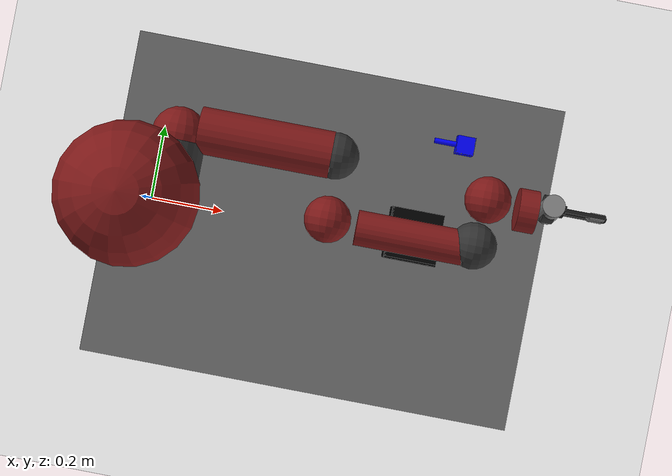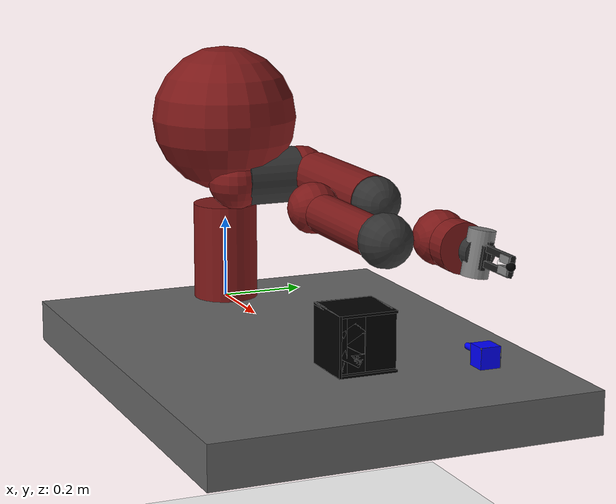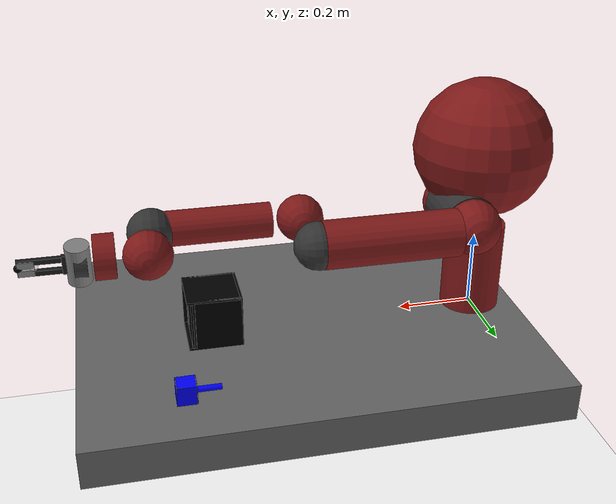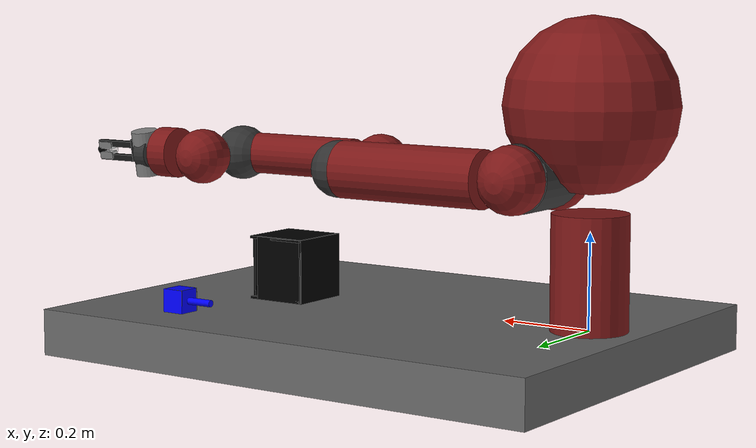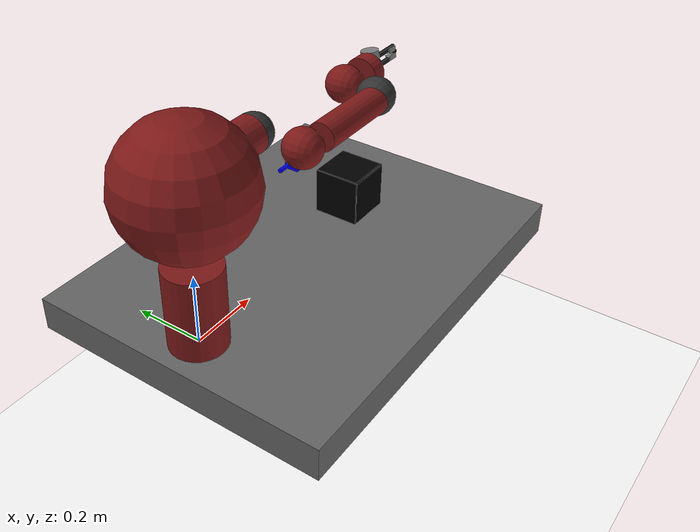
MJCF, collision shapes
<mujoco>
  <size nconmax="1000" njmax="1000" />
  <compiler angle="radian" meshdir="meshes/" />
  <asset>
    <include file="shared_assets.xml"></include>
  </asset>
  <default>
    <include file="shared.xml"></include>
  </default>
  <equality>
    <weld body1="mocap" body2="right_gripper_base" solimp="0.9 0.95 0.001" solref="0.02 1"></weld>
  </equality>
  <option timestep="0.004">
    <flag warmstart="enable"></flag>
  </option>

  <worldbody>
    <light directional="true" ambient="0.2 0.2 0.2" diffuse="0.8 0.8 0.8" specular="0.03 0.03 0.03" castshadow="false" pos="2 2 2" dir="-1 -.2 -.8" name="light0"></light>
    <geom name="floor0" pos="0.4 0 -0.8" size="2.2 2.7 1" type="plane" condim="3" material="floor_mat"></geom>

    <camera name="camera_topdown" mode="fixed" zaxis="0 0 1" pos="0 0 3" />
    <camera name="camera_side" mode="fixed" zaxis="0 -1 0" pos="0.4 -2 0.5" />
    <camera name="camera_front" mode="fixed" xyaxes="0 1 0 0 0 1" pos="2.4 0 0.5" />

    <include file="sawyer_robot.xml"/>
    <body mocap="true" name="mocap" pos="1.04059217 0.160202 0.31832305" quat="-0.45439303 0.54237218 -0.45784103 0.53827594">
      <geom conaffinity="0" contype="0" pos="0 0 0.1" rgba="1.0 1.0 1.0 0.5" size="0.01" type="sphere"></geom>
    </body>

    <include file="objects/box_with_lid_h.xml"/>
    <include file="objects/block_peg_h.xml"/>
  </worldbody>

  <actuator>
    <position ctrllimited="true" ctrlrange="-0.0115 0.03" joint="r_gripper_l_finger_joint" kp="120000" name="slide_l_claw"
              user="1"/>
    <position ctrllimited="true" ctrlrange="-0.03 0.0115" joint="r_gripper_r_finger_joint" kp="120000" name="slide_r_claw"
              user="1"/>

  </actuator>

</mujoco>

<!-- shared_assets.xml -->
<mujoco>
  <texture type="skybox" builtin="gradient" rgb1="0.44 0.85 0.56" rgb2="0.46 0.87 0.58" width="32" height="32"></texture>
  <material name="floor_mat" specular="0" shininess="0.5" reflectance="0" rgba="1 1 1 1"></material>
  <material name="block_mat" specular="0" shininess="0.5" reflectance="0" rgba="0.2 0.2 0.2 1"></material>
  <mesh name="base" file="base.STL" />
  <mesh name="l0" file="l0.STL" />
  <mesh name="head" file="head.STL" />
  <mesh name="l1" file="l1.STL" />
  <mesh name="l2" file="l2.STL" />
  <mesh name="l3" file="l3.STL" />
  <mesh name="l4" file="l4.STL" />
  <mesh name="l5" file="l5.STL" />
  <mesh name="l6" file="l6.STL" />
  <mesh name="half_round_tip" file="half_round_tip.STL" />
  <mesh name="electric_gripper_base" file="electric_gripper_base.STL" />
  <mesh name="finger_extended_narrow" file="extended_narrow.STL"/>
  <mesh name="finger_extended_wide" file="extended_wide.STL"/>
  <mesh name="paddle_tip" file="paddle_tip.STL"/>
  <mesh name="yellow_bin_v1" file="yellow_bin_v1.STL"/>
  <mesh name="red_bin_v1" file="red_bin_v1.STL"/>
  <mesh name="green_bin_v1" file="green_bin_v1.STL"/>
  <mesh name="pedestal_table" file="pedestal_table.STL"/>
  <mesh name="box_body" scale="0.001 0.001 0.001" file="box_body.STL"/>
  <mesh name="box_lid" scale="0.001 0.001 0.001" file="box_lid.STL"/>
  <mesh name="box_triangle" scale="0.001 0.001 0.001" file="box_triangle.STL"/>
</mujoco>

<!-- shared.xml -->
<mujoco>
  <geom solref="0.009 1" solimp="0.8 0.9 0." />
  <default class="viz">
    <geom contype="0" conaffinity="0" group="1" type="mesh"/>
  </default>
  <motor ctrllimited="true" ctrlrange="-1 1"/>
  <position ctrllimited="true"/>
  <default class='0'>
    <geom friction="1 0.005 0.001" rgba=".75 .6 .5 1" contype="1" conaffinity="0"/>
  </default>
  <default class='1'>
    <geom friction="1 0.005 0.001" rgba=".7 .6 .55 1" contype="1" conaffinity="0"/>
  </default>
  <default class='arm'>
  </default>
</mujoco>

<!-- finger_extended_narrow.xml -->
<mujoco>
    <body name="right_gripper_base" pos="0 0 0.025">
    <inertial pos="0 0 0" quat="-0.5 0.5 0.5 0.5" mass="0.3" diaginertia="3e-08 2e-08 2e-08" />
    <geom quat="0 0 0.707107 0.707107" class="viz" mesh="electric_gripper_base" />
    <geom size="0.029 0.05" quat="0 0 0.707107 0.707107" type="cylinder" />
    <body name="r_gripper_l_finger" pos="0 -0.0015 0.02">
        <inertial pos="0 0 0" quat="0 0 0 -1" mass="0.02" diaginertia="0.01 0.01 0.01" />
        <joint name="r_gripper_l_finger_joint" pos="0 0 0" axis="0 1 0" type="slide" range="0.02 0.045" armature="100" damping="1000" limited="true" solimplimit="0.99 0.999 0.01" solreflimit="0.01 1"/>
        <geom class="viz" mesh="finger_extended_narrow" euler="1.57 1.57 0" rgba="0.1 0.1 0.1 1"/>
        <geom size="0.005 0.00675 0.05635" contype="0" pos="0 0.01725 0.0615" quat="0 0 0 -1" type="box" rgba="0.1 0.1 0.1 1"/>
        <geom size="0.005 0.025 0.0085" contype="0" pos="-0.005 -0.003 0.0083" quat="0 0 0 -1" type="box" rgba="0.1 0.1 0.1 1"/>
        <body name="r_gripper_l_finger_tip" pos="0 0.01725 0.1127">
            <inertial pos="0 0 0" quat="0 0 0 1" mass="0.01" diaginertia="0.01 0.01 0.01" />
            <geom pos="-.007 -.01 0.003" class="viz" mesh="half_round_tip" euler="-1.57 0 0" friction="0 0 0"/>
            <geom name="finger_tip_1" size="0.008 0.008 0.0185" pos="0 -0.0045 -0.015" quat="0 0 0 1" type="box" friction="0 0 0"/>
        </body>
    </body>
    <body name="r_gripper_r_finger" pos="0 0.0015 0.02">
        <inertial pos="0 0 0" mass="0.02" diaginertia="0.01 0.01 0.01" />
        <joint name="r_gripper_r_finger_joint" pos="0 0 0" axis="0 1 0" type="slide" range="-0.045 -0.02" armature="100" damping="1000" limited="true" solimplimit="0.99 0.999 0.01" solreflimit="0.01 1"/>
        <geom class="viz" mesh="finger_extended_narrow" euler="1.57 -1.57 0" rgba="0.1 0.1 0.1 1"/>
        <geom size="0.005 0.00675 0.05635" contype="0" pos="0 -0.01725 0.0615" type="box" rgba="0.1 0.1 0.1 1"/>
        <geom size="0.005 0.025 0.0085" contype="0" pos="0.005 0.003 0.0083" type="box" rgba="0.1 0.1 0.1 1"/>
        <body name="r_gripper_r_finger_tip" pos="0 -0.01725 0.1127">
            <inertial pos="0 0 0" mass="0.01" diaginertia="0.01 0.01 0.01" />
            <geom pos=".007 .01 0.003" class="viz" mesh="half_round_tip" euler="-1.57 3.14 0" friction="0 0 0"/>
            <geom name="finger_tip_2" size="0.008 0.008 0.0185" pos="0 0.0045 -0.015" type="box" friction="0 0 0"/>
        </body>
    </body>
    <site name="gripper_site" pos="0 0 0.135" rgba="0 0 0 1" size="0.01" type="sphere"></site>
    </body>
</mujoco>

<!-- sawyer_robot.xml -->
<mujoco>
    <body name="pedestal_table" pos="0.482 0 -0.05">
      <inertial pos="0 0 0" quat="0.659267 -0.259505 -0.260945 0.655692" mass="60.864" diaginertia="6.0869 5.81635 4.20915" />
      <geom name="table" size="0.6 0.45 0.05" pos="0 0 0" type="box" rgba="0.4 0.4 0.4 1" condim="6" friction="0.95 0.3 0.2" />
    <body name="right_arm_base_link" pos="-0.482 0 0.05">
      <inertial pos="-0.0006241 -2.8025e-05 0.065404" quat="-0.209285 0.674441 0.227335 0.670558" mass="2.0687" diaginertia="0.00740351 0.00681776 0.00672942" />
      <geom type="mesh" contype="0" conaffinity="0" group="1" rgba="0.5 0.1 0.1 1" mesh="base" />
      <geom size="0.08 0.12" pos="0 0 0.12" type="cylinder" rgba="0.5 0.1 0.1 0" />
      <body name="right_l0" pos="0 0 0.08">
        <inertial pos="0.024366 0.010969 0.14363" quat="0.894823 0.00899958 -0.170275 0.412573" mass="5.3213" diaginertia="0.0651588 0.0510944 0.0186218" />
        <joint name="right_j0" pos="0 0 0" axis="0 0 1" limited="true" range="-3.0503 3.0503" damping="1000"/>
        <geom type="mesh" contype="0" conaffinity="0" group="1" rgba="0.5 0.1 0.1 1" mesh="l0" />
        <geom size="0.07" pos="0.08 0 0.23" rgba="0.5 0.1 0.1 0" />
        <body name="head" pos="0 0 0.2965">
          <inertial pos="0.0053207 -2.6549e-05 0.1021" quat="0.999993 7.08405e-05 -0.00359857 -0.000626247" mass="1.5795" diaginertia="0.0118334 0.00827089 0.00496574" />
          <geom type="mesh" contype="0" conaffinity="0" group="1" rgba="0.5 0.1 0.1 1" mesh="head" />
          <geom size="0.18" pos="0 0 0.08" rgba="0.5 0.1 0.1 0" />
          <body name="screen" pos="0.03 0 0.105" quat="0.5 0.5 0.5 0.5">
            <inertial pos="0 0 0" mass="0.0001" diaginertia="1e-08 1e-08 1e-08" />
            <geom size="0.12 0.07 0.001" type="box" contype="0" conaffinity="0" group="1" rgba="0.2 0.2 0.2 0" />
            <geom size="0.001" rgba="0.2 0.2 0.2 0" />
          </body>
          <body name="head_camera" pos="0.0228027 0 0.216572" quat="0.342813 -0.618449 0.618449 -0.342813">
            <inertial pos="0.0228027 0 0.216572" quat="0.342813 -0.618449 0.618449 -0.342813" mass="0" diaginertia="0 0 0" />
            <site name="headsite" pos="0 0 0" size="0.01" />
          </body>
        </body>
        <body name="right_torso_itb" pos="-0.055 0 0.22" quat="0.707107 0 -0.707107 0">
          <inertial pos="0 0 0" mass="0.0001" diaginertia="1e-08 1e-08 1e-08" />
        </body>
        <body name="right_l1" pos="0.081 0.05 0.237" quat="0.5 -0.5 0.5 0.5">
          <inertial pos="-0.0030849 -0.026811 0.092521" quat="0.424888 0.891987 0.132364 -0.0794296" mass="4.505" diaginertia="0.0224339 0.0221624 0.0097097" />
          <joint name="right_j1" pos="0 0 0" axis="0 0 1" limited="true" range="-3.8095 2.2736" damping="1000"/>
          <geom type="mesh" contype="0" conaffinity="0" group="1" rgba="0.5 0.1 0.1 1" mesh="l1" />
          <geom size="0.07" pos="0 0 0.1225" rgba="0.5 0.1 0.1 0" />
          <body name="right_l2" pos="0 -0.14 0.1425" quat="0.707107 0.707107 0 0">
            <inertial pos="-0.00016044 -0.014967 0.13582" quat="0.707831 -0.0524761 0.0516007 0.702537" mass="1.745" diaginertia="0.0257928 0.025506 0.00292515" />
            <joint name="right_j2" pos="0 0 0" axis="0 0 1" limited="true" range="-3.0426 3.0426" damping="1000"/>
            <geom type="mesh" contype="0" conaffinity="0" group="1" rgba="0.5 0.1 0.1 1" mesh="l2" />
            <geom size="0.06 0.17" pos="0 0 0.08" type="cylinder" rgba="0.5 0.1 0.1 0" />
            <body name="right_l3" pos="0 -0.042 0.26" quat="0.707107 -0.707107 0 0">
              <site name="armsite" pos="0 0 0" size="0.01" />
              <inertial pos="-0.0048135 -0.0281 -0.084154" quat="0.902999 0.385391 -0.0880901 0.168247" mass="2.5097" diaginertia="0.0102404 0.0096997 0.00369622" />
              <joint name="right_j3" pos="0 0 0" axis="0 0 1" limited="true" range="-3.0439 3.0439" damping="1000"/>
              <geom type="mesh" contype="0" conaffinity="0" group="1" rgba="0.5 0.1 0.1 1" mesh="l3" />
              <geom size="0.06" pos="0 -0.01 -0.12" rgba="0.5 0.1 0.1 0" />
              <body name="right_l4" pos="0 -0.125 -0.1265" quat="0.707107 0.707107 0 0">
                <inertial pos="-0.0018844 0.0069001 0.1341" quat="0.803612 0.031257 -0.0298334 0.593582" mass="1.1136" diaginertia="0.0136549 0.0135493 0.00127353" />
                <joint name="right_j4" pos="0 0 0" axis="0 0 1" limited="true" range="-2.9761 2.9761" damping="1000" />
                <geom type="mesh" contype="0" conaffinity="0" group="1" rgba="0.5 0.1 0.1 1" mesh="l4" />
                <geom size="0.045 0.15" pos="0 0 0.11" type="cylinder" rgba="0.5 0.1 0.1 0" />
                <body name="right_arm_itb" pos="-0.055 0 0.075" quat="0.707107 0 -0.707107 0">
                </body>
                <body name="right_l5" pos="0 0.031 0.275" quat="0.707107 -0.707107 0 0">
                  <inertial pos="0.0061133 -0.023697 0.076416" quat="0.404076 0.9135 0.0473125 0.00158335" mass="1.5625" diaginertia="0.00474131 0.00422857 0.00190672" />
                  <joint name="right_j5" pos="0 0 0" axis="0 0 1" limited="true" range="-2.9761 2.9761" damping="1000"/>
                  <geom type="mesh" contype="0" conaffinity="0" group="1" rgba="0.5 0.1 0.1 1" mesh="l5" />
                  <geom size="0.06" pos="0 0 0.1" rgba="0.5 0.1 0.1 0" />
                  <body name="right_hand_camera" pos="0.039552 -0.033 0.0695" quat="0.707107 0 0.707107 0">
                    <inertial pos="0.039552 -0.033 0.0695" quat="0.707107 0 0.707107 0" mass="0" diaginertia="0 0 0" />
                  </body>
                  <body name="right_wrist" pos="0 0 0.10541" quat="0.707107 0.707107 0 0">
                    <inertial pos="0 0 0.10541" quat="0.707107 0.707107 0 0" mass="0" diaginertia="0 0 0" />
                  </body>
                  <body name="right_l6" pos="0 -0.11 0.1053" quat="0.0616248 0.06163 -0.704416 0.704416">
                    <inertial pos="-8.0726e-06 0.0085838 -0.0049566" quat="0.479044 0.515636 -0.513069 0.491322" mass="0.3292" diaginertia="0.000360258 0.000311068 0.000214974" />
                    <joint name="right_j6" pos="0 0 0" axis="0 0 1" limited="true" range="-4.7124 4.7124" damping="1000"/>
                    <geom type="mesh" contype="0" conaffinity="0" group="1" rgba="0.5 0.1 0.1 1" mesh="l6" />
                    <geom size="0.055 0.025" pos="0 0.015 -0.01" type="cylinder" rgba="0.5 0.1 0.1 0" />
                    <body name="right_hand" pos="0 0 0.0245" quat="0.707107 0 0 0.707107">
                      <inertial pos="1e-08 1e-08 1e-08" quat="0.820473 0.339851 -0.17592 0.424708" mass="1e-08" diaginertia="1e-08 1e-08 1e-08" />
                      <geom size="0.035 0.015" pos="0 0 0.02" type="cylinder" rgba="0.2 0.2 0.2 0"/>

<!--  ================= BEGIN GRIPPER ================= /-->
                                                        <!--site name="endeffector" pos="0 0 0" size="0.01" /-->
                                                    <!--/body-->
                                                <!--/body-->
                      <include file="finger_extended_narrow.xml" />

<!--  ================= END GRIPPER ================= /-->

                    </body>
                  </body>
                </body>
                <body name="right_l4_2" pos="0 0 0">
                  <inertial pos="1e-08 1e-08 1e-08" quat="0.820473 0.339851 -0.17592 0.424708" mass="1e-08" diaginertia="1e-08 1e-08 1e-08" />
                  <geom size="0.06" pos="0 0.01 0.26" rgba="0.2 0.2 0.2 0"/>
                </body>
              </body>
            </body>
            <body name="right_l2_2" pos="0 0 0">
              <inertial pos="1e-08 1e-08 1e-08" quat="0.820473 0.339851 -0.17592 0.424708" mass="1e-08" diaginertia="1e-08 1e-08 1e-08" />
              <geom size="0.06" pos="0 0 0.26" rgba="0.2 0.2 0.2 0"/>
            </body>
          </body>
          <body name="right_l1_2" pos="0 0 0">
            <inertial pos="1e-08 1e-08 1e-08" quat="0.820473 0.339851 -0.17592 0.424708" mass="1e-08" diaginertia="1e-08 1e-08 1e-08" />
            <geom size="0.07 0.07" pos="0 0 0.035" type="cylinder" rgba="0.2 0.2 0.2 0"/>
          </body>
        </body>
      </body>
    </body>
  </body>
</mujoco>

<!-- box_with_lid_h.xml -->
<mujoco>
  <body name="box_base" pos="0.656 0.1 0.002" euler="-1.571 1.571 -1.571">
    <geom name="box_base:mesh" type="mesh" contype="0" conaffinity="0" rgba="0.87 0.72 0.52 1" mesh="box_body"/>
    <geom name="box_base:b1" type="box"
      contype="1" conaffinity="1"
      size="0.06985 0.002778 0.06985" pos="0.06985 0.136922 0.06985" rgba="0 0 0 0"/>
    <geom name="box_base:b2" type="box"
      contype="1" conaffinity="1"
      size="0.06985 0.06985 0.002778" pos="0.06985 0.06985 0.0014" rgba="0 0 0 0"/>
    <geom name="box_base:b3" type="box"
      contype="1" conaffinity="1"
      size="0.002778 0.06985 0.06985" pos="0.002778 0.06985 0.06985" rgba="0 0 0 0"/>
    <geom name="box_base:b4" type="box"
      contype="1" conaffinity="1"
      size="0.002778 0.06985 0.06985" pos="0.136922 0.06985 0.06985" rgba="0 0 0 0"/>
    <geom name="box_base:b5" type="box"
      contype="1" conaffinity="1"
      size="0.06985 0.002778 0.06" pos="0.06985 0.002778 0.06" rgba="0 0 0 0"/>

    <body name="box_lid" pos="0.007 0.0 0.1258">
      <geom name="box_lid:mesh" type="mesh" contype="0" conaffinity="0" rgba="0.87 0.72 0.52 1" mesh="box_lid"/>
      <geom name="box_lid:b1" type="box"
        contype="1" conaffinity="1" condim="1"
        size="0.0635 0.037 0.002381" pos="0.0635 0.037 0.002381" rgba="0 0 0 0"/>
      <geom name="box_lid:b2" type="box"
        contype="1" conaffinity="1" condim="1"
        size="0.02 0.0297 0.002381" pos="0.02 0.1036 0.002381" rgba="0 0 0 0"/>
      <geom name="box_lid:b3" type="box"
        contype="1" conaffinity="1" condim="1"
        size="0.02 0.0297 0.002381" pos="0.107 0.1036 0.002381" rgba="0 0 0 0"/>
      <geom name="box_lid:b4" type="box"
        contype="1" conaffinity="1" condim="1"
        size="0.0635 0.0079 0.002381" pos="0.0635 0.1254 0.002381" rgba="0 0 0 0"/>
      <geom name="box_lid:b5" type="box"
        contype="1" conaffinity="1" condim="1"
        size="0.015 0.025 0.002381" pos="0.036 0.1036 0.002381" euler="0 0 -0.523" rgba="0 0 0 0"/>
      <geom name="box_lid:b6" type="box"
        contype="1" conaffinity="1" condim="1"
        size="0.015 0.025 0.002381" pos="0.091 0.1036 0.002381" euler="0 0 0.523" rgba="0 0 0 0"/>
      <site name="box_lid:hole" type="sphere" size="0.01" rgba="0 0 0 0" pos="0.0635 0.08949 0.002381"/>
      <joint name="box_lid:joint" type="slide" axis="0 1 0"
        limited="true" range="-0.12 0" damping="10.0"/>
    </body>
  </body>
</mujoco>

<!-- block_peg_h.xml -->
<mujoco>
  <body name="peg" pos="0.824 0.302 0.05">
    <!-- contype/conaffinity set to not collide between head and body geoms -->
    <geom name="peg:head" type="box"
      rgba="0 0 1 1" size="0.025 0.025 0.025" pos="0 0 -0.025"
      condim="4" solimp="0.98 0.998 0.001" solref="0.02 1"
      density="700" friction="0.95 0.5 0.2"
      contype="1" conaffinity="1" />
    <geom name="peg:body" type="cylinder"
      rgba="0 0 1 1" size=".0075 .03" pos="-0.055 0 -0.025"
      density="700" friction="0 0 0"
      contype="1" conaffinity="1"
      quat="0.707 0 0.707 0" />
    <geom name="peg:b1" type="box"
      rgba="0.5 0.5 0.5 0" size="0.001 0.025 0.025" pos="0.024 0 -0.025"
      density="0"
      contype="1" conaffinity="1" />
    <geom name="peg:b2" type="box"
      rgba="0.5 0.5 0.5 0" size="0.001 0.025 0.025" pos="-0.024 0 -0.025"
      density="0"
      contype="1" conaffinity="1" />
    <geom name="peg:b3" type="box"
      rgba="0.5 0.5 0.5 0" size="0.025 0.001 0.025" pos="0 0.024 -0.025"
      density="0"
      contype="1" conaffinity="1" />
    <geom name="peg:b4" type="box"
      rgba="0.5 0.5 0.5 0" size="0.025 0.001 0.025" pos="0 -0.024 -0.025"
      density="0"
      contype="1" conaffinity="1" />
    <site name="peg:site" type="sphere" size="0.01" pos="0 0 -0.025" rgba="0 0 0 1" />
    <joint name="peg:joint" type="free" damping="0.0"/>
  </body>
</mujoco>
